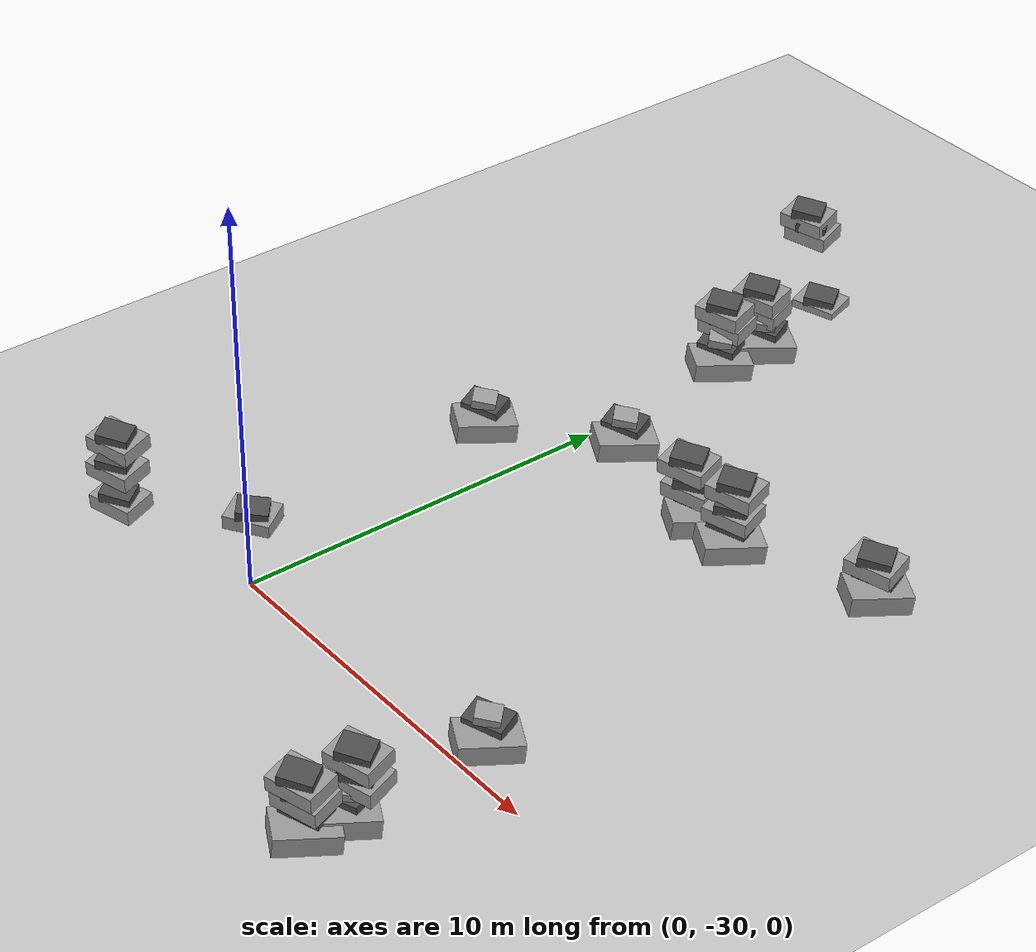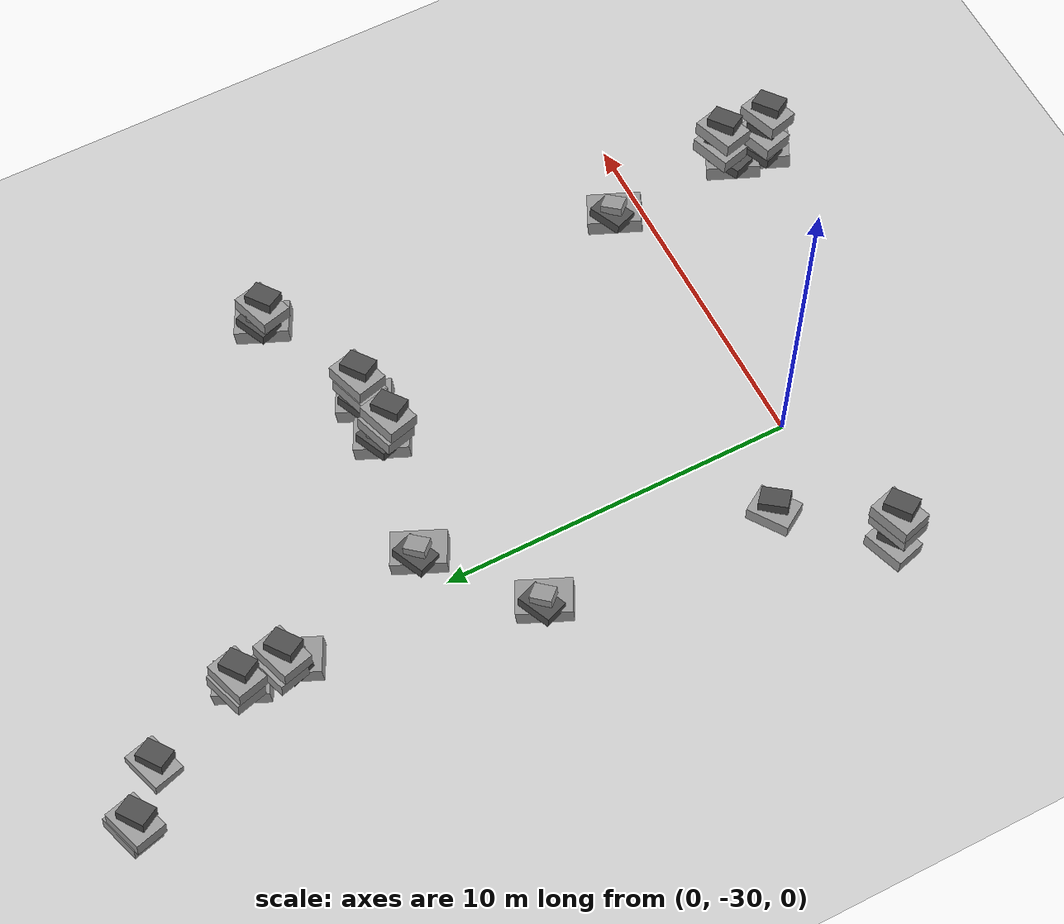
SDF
<sdf version="1.9">
 <world name="disaster_hospital">
  <include>
   <uri>file:///home/robotics/.gazebo/models/ground_plane</uri>
   <static>true</static>
   <name>ground_plane</name>
   <pose>0 0 -0.1 0 -0 0</pose>
  </include>
  <model name="rubble1_02">
   <static>true</static>
   <pose>-4.41712 -30.6792 1.66266 0 -0 0</pose>
   <link name="link">
    <collision name="base_collision">
     <pose>0 0 0.2 0.1 0.05 0.3</pose>
     <geometry><box><size>1.2 0.9 0.4</size></box></geometry>
    </collision>
    <visual name="base_visual">
     <pose>0 0 0.2 0.1 0.05 0.3</pose>
     <geometry><box><size>1.2 0.9 0.4</size></box></geometry>
     <material>
      <script><uri>file://media/materials/scripts/gazebo.material</uri><name>Gazebo/Grey</name></script>
     </material>
    </visual>
    <collision name="top_collision">
     <pose>0.1 -0.1 0.5 0.2 0.1 0.6</pose>
     <geometry><box><size>0.8 0.6 0.3</size></box></geometry>
    </collision>
    <visual name="top_visual">
     <pose>0.1 -0.1 0.5 0.2 0.1 0.6</pose>
     <geometry><box><size>0.8 0.6 0.3</size></box></geometry>
     <material>
      <script><uri>file://media/materials/scripts/gazebo.material</uri><name>Gazebo/DarkGrey</name></script>
     </material>
    </visual>
    <inertial>
     <mass>1</mass>
     <inertia><ixx>1</ixx><ixy>0</ixy><ixz>0</ixz><iyy>1</iyy><iyz>0</iyz><izz>1</izz></inertia>
    </inertial>
   </link>
  </model>
  <model name="rubble1_05">
   <static>true</static>
   <pose>-2.87095 -10.2207 1.15439 0 -0 0</pose>
   <link name="link">
    <collision name="base_collision">
     <pose>0 0 0.2 0.1 0.05 0.3</pose>
     <geometry><box><size>1.2 0.9 0.4</size></box></geometry>
    </collision>
    <visual name="base_visual">
     <pose>0 0 0.2 0.1 0.05 0.3</pose>
     <geometry><box><size>1.2 0.9 0.4</size></box></geometry>
     <material>
      <script><uri>file://media/materials/scripts/gazebo.material</uri><name>Gazebo/Grey</name></script>
     </material>
    </visual>
    <collision name="top_collision">
     <pose>0.1 -0.1 0.5 0.2 0.1 0.6</pose>
     <geometry><box><size>0.8 0.6 0.3</size></box></geometry>
    </collision>
    <visual name="top_visual">
     <pose>0.1 -0.1 0.5 0.2 0.1 0.6</pose>
     <geometry><box><size>0.8 0.6 0.3</size></box></geometry>
     <material>
      <script><uri>file://media/materials/scripts/gazebo.material</uri><name>Gazebo/DarkGrey</name></script>
     </material>
    </visual>
    <inertial>
     <mass>1</mass>
     <inertia><ixx>1</ixx><ixy>0</ixy><ixz>0</ixz><iyy>1</iyy><iyz>0</iyz><izz>1</izz></inertia>
    </inertial>
   </link>
  </model>
  <model name="rubble2_11">
   <static>true</static>
   <pose>9.22413 -19.0507 0 0 -0 0</pose>
   <link name="link">
    <collision name="base_collision">
     <pose>0 0 0.25 0.05 0.1 1.1</pose>
     <geometry><box><size>1.5 1 0.5</size></box></geometry>
    </collision>
    <visual name="base_visual">
     <pose>0 0 0.25 0.05 0.1 1.1</pose>
     <geometry><box><size>1.5 1 0.5</size></box></geometry>
     <material>
      <script><uri>file://media/materials/scripts/gazebo.material</uri><name>Gazebo/Grey</name></script>
     </material>
    </visual>
    <collision name="mid_collision">
     <pose>-0.2 0.2 0.6 0.15 0.05 0.4</pose>
     <geometry><box><size>1 0.7 0.3</size></box></geometry>
    </collision>
    <visual name="mid_visual">
     <pose>-0.2 0.2 0.6 0.15 0.05 0.4</pose>
     <geometry><box><size>1 0.7 0.3</size></box></geometry>
     <material>
      <script><uri>file://media/materials/scripts/gazebo.material</uri><name>Gazebo/DarkGrey</name></script>
     </material>
    </visual>
    <collision name="top_collision">
     <pose>-0.1 0.1 0.85 0.2 0.15 0.8</pose>
     <geometry><box><size>0.6 0.5 0.25</size></box></geometry>
    </collision>
    <visual name="top_visual">
     <pose>-0.1 0.1 0.85 0.2 0.15 0.8</pose>
     <geometry><box><size>0.6 0.5 0.25</size></box></geometry>
     <material>
      <script><uri>file://media/materials/scripts/gazebo.material</uri><name>Gazebo/Grey</name></script>
     </material>
    </visual>
    <inertial>
     <mass>1</mass>
     <inertia><ixx>1</ixx><ixy>0</ixy><ixz>0</ixz><iyy>1</iyy><iyz>0</iyz><izz>1</izz></inertia>
    </inertial>
   </link>
  </model>
  <model name="rubble2_13">
   <static>true</static>
   <pose>-0.248679 -15.565 0 0 -0 0</pose>
   <link name="link">
    <collision name="base_collision">
     <pose>0 0 0.25 0.05 0.1 1.1</pose>
     <geometry><box><size>1.5 1 0.5</size></box></geometry>
    </collision>
    <visual name="base_visual">
     <pose>0 0 0.25 0.05 0.1 1.1</pose>
     <geometry><box><size>1.5 1 0.5</size></box></geometry>
     <material>
      <script><uri>file://media/materials/scripts/gazebo.material</uri><name>Gazebo/Grey</name></script>
     </material>
    </visual>
    <collision name="mid_collision">
     <pose>-0.2 0.2 0.6 0.15 0.05 0.4</pose>
     <geometry><box><size>1 0.7 0.3</size></box></geometry>
    </collision>
    <visual name="mid_visual">
     <pose>-0.2 0.2 0.6 0.15 0.05 0.4</pose>
     <geometry><box><size>1 0.7 0.3</size></box></geometry>
     <material>
      <script><uri>file://media/materials/scripts/gazebo.material</uri><name>Gazebo/DarkGrey</name></script>
     </material>
    </visual>
    <collision name="top_collision">
     <pose>-0.1 0.1 0.85 0.2 0.15 0.8</pose>
     <geometry><box><size>0.6 0.5 0.25</size></box></geometry>
    </collision>
    <visual name="top_visual">
     <pose>-0.1 0.1 0.85 0.2 0.15 0.8</pose>
     <geometry><box><size>0.6 0.5 0.25</size></box></geometry>
     <material>
      <script><uri>file://media/materials/scripts/gazebo.material</uri><name>Gazebo/Grey</name></script>
     </material>
    </visual>
    <inertial>
     <mass>1</mass>
     <inertia><ixx>1</ixx><ixy>0</ixy><ixz>0</ixz><iyy>1</iyy><iyz>0</iyz><izz>1</izz></inertia>
    </inertial>
   </link>
  </model>
  <model name="rubble2_14">
   <static>true</static>
   <pose>-0.190508 -14.1517 0 0 -0 0</pose>
   <link name="link">
    <collision name="base_collision">
     <pose>0 0 0.25 0.05 0.1 1.1</pose>
     <geometry><box><size>1.5 1 0.5</size></box></geometry>
    </collision>
    <visual name="base_visual">
     <pose>0 0 0.25 0.05 0.1 1.1</pose>
     <geometry><box><size>1.5 1 0.5</size></box></geometry>
     <material>
      <script><uri>file://media/materials/scripts/gazebo.material</uri><name>Gazebo/Grey</name></script>
     </material>
    </visual>
    <collision name="mid_collision">
     <pose>-0.2 0.2 0.6 0.15 0.05 0.4</pose>
     <geometry><box><size>1 0.7 0.3</size></box></geometry>
    </collision>
    <visual name="mid_visual">
     <pose>-0.2 0.2 0.6 0.15 0.05 0.4</pose>
     <geometry><box><size>1 0.7 0.3</size></box></geometry>
     <material>
      <script><uri>file://media/materials/scripts/gazebo.material</uri><name>Gazebo/DarkGrey</name></script>
     </material>
    </visual>
    <collision name="top_collision">
     <pose>-0.1 0.1 0.85 0.2 0.15 0.8</pose>
     <geometry><box><size>0.6 0.5 0.25</size></box></geometry>
    </collision>
    <visual name="top_visual">
     <pose>-0.1 0.1 0.85 0.2 0.15 0.8</pose>
     <geometry><box><size>0.6 0.5 0.25</size></box></geometry>
     <material>
      <script><uri>file://media/materials/scripts/gazebo.material</uri><name>Gazebo/Grey</name></script>
     </material>
    </visual>
    <inertial>
     <mass>1</mass>
     <inertia><ixx>1</ixx><ixy>0</ixy><ixz>0</ixz><iyy>1</iyy><iyz>0</iyz><izz>1</izz></inertia>
    </inertial>
   </link>
  </model>
  <model name="rubble1_12">
   <static>true</static>
   <pose>-0.54765 -15.1975 1.30082 0 -0 0</pose>
   <link name="link">
    <collision name="base_collision">
     <pose>0 0 0.2 0.1 0.05 0.3</pose>
     <geometry><box><size>1.2 0.9 0.4</size></box></geometry>
    </collision>
    <visual name="base_visual">
     <pose>0 0 0.2 0.1 0.05 0.3</pose>
     <geometry><box><size>1.2 0.9 0.4</size></box></geometry>
     <material>
      <script><uri>file://media/materials/scripts/gazebo.material</uri><name>Gazebo/Grey</name></script>
     </material>
    </visual>
    <collision name="top_collision">
     <pose>0.1 -0.1 0.5 0.2 0.1 0.6</pose>
     <geometry><box><size>0.8 0.6 0.3</size></box></geometry>
    </collision>
    <visual name="top_visual">
     <pose>0.1 -0.1 0.5 0.2 0.1 0.6</pose>
     <geometry><box><size>0.8 0.6 0.3</size></box></geometry>
     <material>
      <script><uri>file://media/materials/scripts/gazebo.material</uri><name>Gazebo/DarkGrey</name></script>
     </material>
    </visual>
    <inertial>
     <mass>1</mass>
     <inertia><ixx>1</ixx><ixy>0</ixy><ixz>0</ixz><iyy>1</iyy><iyz>0</iyz><izz>1</izz></inertia>
    </inertial>
   </link>
  </model>
  <model name="rubble1_13">
   <static>true</static>
   <pose>-0.531983 -13.9777 1.2937 0 -0 0</pose>
   <link name="link">
    <collision name="base_collision">
     <pose>0 0 0.2 0.1 0.05 0.3</pose>
     <geometry><box><size>1.2 0.9 0.4</size></box></geometry>
    </collision>
    <visual name="base_visual">
     <pose>0 0 0.2 0.1 0.05 0.3</pose>
     <geometry><box><size>1.2 0.9 0.4</size></box></geometry>
     <material>
      <script><uri>file://media/materials/scripts/gazebo.material</uri><name>Gazebo/Grey</name></script>
     </material>
    </visual>
    <collision name="top_collision">
     <pose>0.1 -0.1 0.5 0.2 0.1 0.6</pose>
     <geometry><box><size>0.8 0.6 0.3</size></box></geometry>
    </collision>
    <visual name="top_visual">
     <pose>0.1 -0.1 0.5 0.2 0.1 0.6</pose>
     <geometry><box><size>0.8 0.6 0.3</size></box></geometry>
     <material>
      <script><uri>file://media/materials/scripts/gazebo.material</uri><name>Gazebo/DarkGrey</name></script>
     </material>
    </visual>
    <inertial>
     <mass>1</mass>
     <inertia><ixx>1</ixx><ixy>0</ixy><ixz>0</ixz><iyy>1</iyy><iyz>0</iyz><izz>1</izz></inertia>
    </inertial>
   </link>
  </model>
  <model name="rubble2_22">
   <static>true</static>
   <pose>8.02548 -33.0318 0 0 -0 0</pose>
   <link name="link">
    <collision name="base_collision">
     <pose>0 0 0.25 0.05 0.1 1.1</pose>
     <geometry><box><size>1.5 1 0.5</size></box></geometry>
    </collision>
    <visual name="base_visual">
     <pose>0 0 0.25 0.05 0.1 1.1</pose>
     <geometry><box><size>1.5 1 0.5</size></box></geometry>
     <material>
      <script><uri>file://media/materials/scripts/gazebo.material</uri><name>Gazebo/Grey</name></script>
     </material>
    </visual>
    <collision name="mid_collision">
     <pose>-0.2 0.2 0.6 0.15 0.05 0.4</pose>
     <geometry><box><size>1 0.7 0.3</size></box></geometry>
    </collision>
    <visual name="mid_visual">
     <pose>-0.2 0.2 0.6 0.15 0.05 0.4</pose>
     <geometry><box><size>1 0.7 0.3</size></box></geometry>
     <material>
      <script><uri>file://media/materials/scripts/gazebo.material</uri><name>Gazebo/DarkGrey</name></script>
     </material>
    </visual>
    <collision name="top_collision">
     <pose>-0.1 0.1 0.85 0.2 0.15 0.8</pose>
     <geometry><box><size>0.6 0.5 0.25</size></box></geometry>
    </collision>
    <visual name="top_visual">
     <pose>-0.1 0.1 0.85 0.2 0.15 0.8</pose>
     <geometry><box><size>0.6 0.5 0.25</size></box></geometry>
     <material>
      <script><uri>file://media/materials/scripts/gazebo.material</uri><name>Gazebo/Grey</name></script>
     </material>
    </visual>
    <inertial>
     <mass>1</mass>
     <inertia><ixx>1</ixx><ixy>0</ixy><ixz>0</ixz><iyy>1</iyy><iyz>0</iyz><izz>1</izz></inertia>
    </inertial>
   </link>
  </model>
  <model name="rubble2_23">
   <static>true</static>
   <pose>7.93903 -33.9465 0 0 -0 0</pose>
   <link name="link">
    <collision name="base_collision">
     <pose>0 0 0.25 0.05 0.1 1.1</pose>
     <geometry><box><size>1.5 1 0.5</size></box></geometry>
    </collision>
    <visual name="base_visual">
     <pose>0 0 0.25 0.05 0.1 1.1</pose>
     <geometry><box><size>1.5 1 0.5</size></box></geometry>
     <material>
      <script><uri>file://media/materials/scripts/gazebo.material</uri><name>Gazebo/Grey</name></script>
     </material>
    </visual>
    <collision name="mid_collision">
     <pose>-0.2 0.2 0.6 0.15 0.05 0.4</pose>
     <geometry><box><size>1 0.7 0.3</size></box></geometry>
    </collision>
    <visual name="mid_visual">
     <pose>-0.2 0.2 0.6 0.15 0.05 0.4</pose>
     <geometry><box><size>1 0.7 0.3</size></box></geometry>
     <material>
      <script><uri>file://media/materials/scripts/gazebo.material</uri><name>Gazebo/DarkGrey</name></script>
     </material>
    </visual>
    <collision name="top_collision">
     <pose>-0.1 0.1 0.85 0.2 0.15 0.8</pose>
     <geometry><box><size>0.6 0.5 0.25</size></box></geometry>
    </collision>
    <visual name="top_visual">
     <pose>-0.1 0.1 0.85 0.2 0.15 0.8</pose>
     <geometry><box><size>0.6 0.5 0.25</size></box></geometry>
     <material>
      <script><uri>file://media/materials/scripts/gazebo.material</uri><name>Gazebo/Grey</name></script>
     </material>
    </visual>
    <inertial>
     <mass>1</mass>
     <inertia><ixx>1</ixx><ixy>0</ixy><ixz>0</ixz><iyy>1</iyy><iyz>0</iyz><izz>1</izz></inertia>
    </inertial>
   </link>
  </model>
  <model name="rubble1_21">
   <static>true</static>
   <pose>9.16097 -19.0703 0.854105 0 -0 0</pose>
   <link name="link">
    <collision name="base_collision">
     <pose>0 0 0.2 0.1 0.05 0.3</pose>
     <geometry><box><size>1.2 0.9 0.4</size></box></geometry>
    </collision>
    <visual name="base_visual">
     <pose>0 0 0.2 0.1 0.05 0.3</pose>
     <geometry><box><size>1.2 0.9 0.4</size></box></geometry>
     <material>
      <script><uri>file://media/materials/scripts/gazebo.material</uri><name>Gazebo/Grey</name></script>
     </material>
    </visual>
    <collision name="top_collision">
     <pose>0.1 -0.1 0.5 0.2 0.1 0.6</pose>
     <geometry><box><size>0.8 0.6 0.3</size></box></geometry>
    </collision>
    <visual name="top_visual">
     <pose>0.1 -0.1 0.5 0.2 0.1 0.6</pose>
     <geometry><box><size>0.8 0.6 0.3</size></box></geometry>
     <material>
      <script><uri>file://media/materials/scripts/gazebo.material</uri><name>Gazebo/DarkGrey</name></script>
     </material>
    </visual>
    <inertial>
     <mass>1</mass>
     <inertia><ixx>1</ixx><ixy>0</ixy><ixz>0</ixz><iyy>1</iyy><iyz>0</iyz><izz>1</izz></inertia>
    </inertial>
   </link>
  </model>
  <model name="rubble1_24">
   <static>true</static>
   <pose>8.04631 -32.5848 0.854105 0 -0 0</pose>
   <link name="link">
    <collision name="base_collision">
     <pose>0 0 0.2 0.1 0.05 0.3</pose>
     <geometry><box><size>1.2 0.9 0.4</size></box></geometry>
    </collision>
    <visual name="base_visual">
     <pose>0 0 0.2 0.1 0.05 0.3</pose>
     <geometry><box><size>1.2 0.9 0.4</size></box></geometry>
     <material>
      <script><uri>file://media/materials/scripts/gazebo.material</uri><name>Gazebo/Grey</name></script>
     </material>
    </visual>
    <collision name="top_collision">
     <pose>0.1 -0.1 0.5 0.2 0.1 0.6</pose>
     <geometry><box><size>0.8 0.6 0.3</size></box></geometry>
    </collision>
    <visual name="top_visual">
     <pose>0.1 -0.1 0.5 0.2 0.1 0.6</pose>
     <geometry><box><size>0.8 0.6 0.3</size></box></geometry>
     <material>
      <script><uri>file://media/materials/scripts/gazebo.material</uri><name>Gazebo/DarkGrey</name></script>
     </material>
    </visual>
    <inertial>
     <mass>1</mass>
     <inertia><ixx>1</ixx><ixy>0</ixy><ixz>0</ixz><iyy>1</iyy><iyz>0</iyz><izz>1</izz></inertia>
    </inertial>
   </link>
  </model>
  <model name="rubble1_25">
   <static>true</static>
   <pose>7.86194 -33.834 0.854105 0 -0 0</pose>
   <link name="link">
    <collision name="base_collision">
     <pose>0 0 0.2 0.1 0.05 0.3</pose>
     <geometry><box><size>1.2 0.9 0.4</size></box></geometry>
    </collision>
    <visual name="base_visual">
     <pose>0 0 0.2 0.1 0.05 0.3</pose>
     <geometry><box><size>1.2 0.9 0.4</size></box></geometry>
     <material>
      <script><uri>file://media/materials/scripts/gazebo.material</uri><name>Gazebo/Grey</name></script>
     </material>
    </visual>
    <collision name="top_collision">
     <pose>0.1 -0.1 0.5 0.2 0.1 0.6</pose>
     <geometry><box><size>0.8 0.6 0.3</size></box></geometry>
    </collision>
    <visual name="top_visual">
     <pose>0.1 -0.1 0.5 0.2 0.1 0.6</pose>
     <geometry><box><size>0.8 0.6 0.3</size></box></geometry>
     <material>
      <script><uri>file://media/materials/scripts/gazebo.material</uri><name>Gazebo/DarkGrey</name></script>
     </material>
    </visual>
    <inertial>
     <mass>1</mass>
     <inertia><ixx>1</ixx><ixy>0</ixy><ixz>0</ixz><iyy>1</iyy><iyz>0</iyz><izz>1</izz></inertia>
    </inertial>
   </link>
  </model>
  <model name="rubble1_26">
   <static>true</static>
   <pose>-2.78031 -10.1297 0.755841 0 -0 0</pose>
   <link name="link">
    <collision name="base_collision">
     <pose>0 0 0.2 0.1 0.05 0.3</pose>
     <geometry><box><size>1.2 0.9 0.4</size></box></geometry>
    </collision>
    <visual name="base_visual">
     <pose>0 0 0.2 0.1 0.05 0.3</pose>
     <geometry><box><size>1.2 0.9 0.4</size></box></geometry>
     <material>
      <script><uri>file://media/materials/scripts/gazebo.material</uri><name>Gazebo/Grey</name></script>
     </material>
    </visual>
    <collision name="top_collision">
     <pose>0.1 -0.1 0.5 0.2 0.1 0.6</pose>
     <geometry><box><size>0.8 0.6 0.3</size></box></geometry>
    </collision>
    <visual name="top_visual">
     <pose>0.1 -0.1 0.5 0.2 0.1 0.6</pose>
     <geometry><box><size>0.8 0.6 0.3</size></box></geometry>
     <material>
      <script><uri>file://media/materials/scripts/gazebo.material</uri><name>Gazebo/DarkGrey</name></script>
     </material>
    </visual>
    <inertial>
     <mass>1</mass>
     <inertia><ixx>1</ixx><ixy>0</ixy><ixz>0</ixz><iyy>1</iyy><iyz>0</iyz><izz>1</izz></inertia>
    </inertial>
   </link>
  </model>
  <model name="rubble1_38">
   <static>true</static>
   <pose>8.11231 -32.6601 1.49923 0 -0 0</pose>
   <link name="link">
    <collision name="base_collision">
     <pose>0 0 0.2 0.1 0.05 0.3</pose>
     <geometry><box><size>1.2 0.9 0.4</size></box></geometry>
    </collision>
    <visual name="base_visual">
     <pose>0 0 0.2 0.1 0.05 0.3</pose>
     <geometry><box><size>1.2 0.9 0.4</size></box></geometry>
     <material>
      <script><uri>file://media/materials/scripts/gazebo.material</uri><name>Gazebo/Grey</name></script>
     </material>
    </visual>
    <collision name="top_collision">
     <pose>0.1 -0.1 0.5 0.2 0.1 0.6</pose>
     <geometry><box><size>0.8 0.6 0.3</size></box></geometry>
    </collision>
    <visual name="top_visual">
     <pose>0.1 -0.1 0.5 0.2 0.1 0.6</pose>
     <geometry><box><size>0.8 0.6 0.3</size></box></geometry>
     <material>
      <script><uri>file://media/materials/scripts/gazebo.material</uri><name>Gazebo/DarkGrey</name></script>
     </material>
    </visual>
    <inertial>
     <mass>1</mass>
     <inertia><ixx>1</ixx><ixy>0</ixy><ixz>0</ixz><iyy>1</iyy><iyz>0</iyz><izz>1</izz></inertia>
    </inertial>
   </link>
  </model>
  <model name="rubble1_39">
   <static>true</static>
   <pose>8.04118 -34.0369 1.49923 0 -0 0</pose>
   <link name="link">
    <collision name="base_collision">
     <pose>0 0 0.2 0.1 0.05 0.3</pose>
     <geometry><box><size>1.2 0.9 0.4</size></box></geometry>
    </collision>
    <visual name="base_visual">
     <pose>0 0 0.2 0.1 0.05 0.3</pose>
     <geometry><box><size>1.2 0.9 0.4</size></box></geometry>
     <material>
      <script><uri>file://media/materials/scripts/gazebo.material</uri><name>Gazebo/Grey</name></script>
     </material>
    </visual>
    <collision name="top_collision">
     <pose>0.1 -0.1 0.5 0.2 0.1 0.6</pose>
     <geometry><box><size>0.8 0.6 0.3</size></box></geometry>
    </collision>
    <visual name="top_visual">
     <pose>0.1 -0.1 0.5 0.2 0.1 0.6</pose>
     <geometry><box><size>0.8 0.6 0.3</size></box></geometry>
     <material>
      <script><uri>file://media/materials/scripts/gazebo.material</uri><name>Gazebo/DarkGrey</name></script>
     </material>
    </visual>
    <inertial>
     <mass>1</mass>
     <inertia><ixx>1</ixx><ixy>0</ixy><ixz>0</ixz><iyy>1</iyy><iyz>0</iyz><izz>1</izz></inertia>
    </inertial>
   </link>
  </model>
  <model name="rubble2_24">
   <static>true</static>
   <pose>5.74322 -20.4269 0 0 -0 0</pose>
   <link name="link">
    <collision name="base_collision">
     <pose>0 0 0.25 0.05 0.1 1.1</pose>
     <geometry><box><size>1.5 1 0.5</size></box></geometry>
    </collision>
    <visual name="base_visual">
     <pose>0 0 0.25 0.05 0.1 1.1</pose>
     <geometry><box><size>1.5 1 0.5</size></box></geometry>
     <material>
      <script><uri>file://media/materials/scripts/gazebo.material</uri><name>Gazebo/Grey</name></script>
     </material>
    </visual>
    <collision name="mid_collision">
     <pose>-0.2 0.2 0.6 0.15 0.05 0.4</pose>
     <geometry><box><size>1 0.7 0.3</size></box></geometry>
    </collision>
    <visual name="mid_visual">
     <pose>-0.2 0.2 0.6 0.15 0.05 0.4</pose>
     <geometry><box><size>1 0.7 0.3</size></box></geometry>
     <material>
      <script><uri>file://media/materials/scripts/gazebo.material</uri><name>Gazebo/DarkGrey</name></script>
     </material>
    </visual>
    <collision name="top_collision">
     <pose>-0.1 0.1 0.85 0.2 0.15 0.8</pose>
     <geometry><box><size>0.6 0.5 0.25</size></box></geometry>
    </collision>
    <visual name="top_visual">
     <pose>-0.1 0.1 0.85 0.2 0.15 0.8</pose>
     <geometry><box><size>0.6 0.5 0.25</size></box></geometry>
     <material>
      <script><uri>file://media/materials/scripts/gazebo.material</uri><name>Gazebo/Grey</name></script>
     </material>
    </visual>
    <inertial>
     <mass>1</mass>
     <inertia><ixx>1</ixx><ixy>0</ixy><ixz>0</ixz><iyy>1</iyy><iyz>0</iyz><izz>1</izz></inertia>
    </inertial>
   </link>
  </model>
  <model name="rubble2_25">
   <static>true</static>
   <pose>4.51114 -20.359 0 0 -0 0</pose>
   <link name="link">
    <collision name="base_collision">
     <pose>0 0 0.25 0.05 0.1 1.1</pose>
     <geometry><box><size>1.5 1 0.5</size></box></geometry>
    </collision>
    <visual name="base_visual">
     <pose>0 0 0.25 0.05 0.1 1.1</pose>
     <geometry><box><size>1.5 1 0.5</size></box></geometry>
     <material>
      <script><uri>file://media/materials/scripts/gazebo.material</uri><name>Gazebo/Grey</name></script>
     </material>
    </visual>
    <collision name="mid_collision">
     <pose>-0.2 0.2 0.6 0.15 0.05 0.4</pose>
     <geometry><box><size>1 0.7 0.3</size></box></geometry>
    </collision>
    <visual name="mid_visual">
     <pose>-0.2 0.2 0.6 0.15 0.05 0.4</pose>
     <geometry><box><size>1 0.7 0.3</size></box></geometry>
     <material>
      <script><uri>file://media/materials/scripts/gazebo.material</uri><name>Gazebo/DarkGrey</name></script>
     </material>
    </visual>
    <collision name="top_collision">
     <pose>-0.1 0.1 0.85 0.2 0.15 0.8</pose>
     <geometry><box><size>0.6 0.5 0.25</size></box></geometry>
    </collision>
    <visual name="top_visual">
     <pose>-0.1 0.1 0.85 0.2 0.15 0.8</pose>
     <geometry><box><size>0.6 0.5 0.25</size></box></geometry>
     <material>
      <script><uri>file://media/materials/scripts/gazebo.material</uri><name>Gazebo/Grey</name></script>
     </material>
    </visual>
    <inertial>
     <mass>1</mass>
     <inertia><ixx>1</ixx><ixy>0</ixy><ixz>0</ixz><iyy>1</iyy><iyz>0</iyz><izz>1</izz></inertia>
    </inertial>
   </link>
  </model>
  <model name="rubble1_40">
   <static>true</static>
   <pose>5.68068 -20.3147 0.854105 0 -0 0</pose>
   <link name="link">
    <collision name="base_collision">
     <pose>0 0 0.2 0.1 0.05 0.3</pose>
     <geometry><box><size>1.2 0.9 0.4</size></box></geometry>
    </collision>
    <visual name="base_visual">
     <pose>0 0 0.2 0.1 0.05 0.3</pose>
     <geometry><box><size>1.2 0.9 0.4</size></box></geometry>
     <material>
      <script><uri>file://media/materials/scripts/gazebo.material</uri><name>Gazebo/Grey</name></script>
     </material>
    </visual>
    <collision name="top_collision">
     <pose>0.1 -0.1 0.5 0.2 0.1 0.6</pose>
     <geometry><box><size>0.8 0.6 0.3</size></box></geometry>
    </collision>
    <visual name="top_visual">
     <pose>0.1 -0.1 0.5 0.2 0.1 0.6</pose>
     <geometry><box><size>0.8 0.6 0.3</size></box></geometry>
     <material>
      <script><uri>file://media/materials/scripts/gazebo.material</uri><name>Gazebo/DarkGrey</name></script>
     </material>
    </visual>
    <inertial>
     <mass>1</mass>
     <inertia><ixx>1</ixx><ixy>0</ixy><ixz>0</ixz><iyy>1</iyy><iyz>0</iyz><izz>1</izz></inertia>
    </inertial>
   </link>
  </model>
  <model name="rubble1_41">
   <static>true</static>
   <pose>4.32796 -20.4065 0.854105 0 -0 0</pose>
   <link name="link">
    <collision name="base_collision">
     <pose>0 0 0.2 0.1 0.05 0.3</pose>
     <geometry><box><size>1.2 0.9 0.4</size></box></geometry>
    </collision>
    <visual name="base_visual">
     <pose>0 0 0.2 0.1 0.05 0.3</pose>
     <geometry><box><size>1.2 0.9 0.4</size></box></geometry>
     <material>
      <script><uri>file://media/materials/scripts/gazebo.material</uri><name>Gazebo/Grey</name></script>
     </material>
    </visual>
    <collision name="top_collision">
     <pose>0.1 -0.1 0.5 0.2 0.1 0.6</pose>
     <geometry><box><size>0.8 0.6 0.3</size></box></geometry>
    </collision>
    <visual name="top_visual">
     <pose>0.1 -0.1 0.5 0.2 0.1 0.6</pose>
     <geometry><box><size>0.8 0.6 0.3</size></box></geometry>
     <material>
      <script><uri>file://media/materials/scripts/gazebo.material</uri><name>Gazebo/DarkGrey</name></script>
     </material>
    </visual>
    <inertial>
     <mass>1</mass>
     <inertia><ixx>1</ixx><ixy>0</ixy><ixz>0</ixz><iyy>1</iyy><iyz>0</iyz><izz>1</izz></inertia>
    </inertial>
   </link>
  </model>
  <model name="rubble1_42">
   <static>true</static>
   <pose>5.71045 -20.279 1.49923 0 -0 0</pose>
   <link name="link">
    <collision name="base_collision">
     <pose>0 0 0.2 0.1 0.05 0.3</pose>
     <geometry><box><size>1.2 0.9 0.4</size></box></geometry>
    </collision>
    <visual name="base_visual">
     <pose>0 0 0.2 0.1 0.05 0.3</pose>
     <geometry><box><size>1.2 0.9 0.4</size></box></geometry>
     <material>
      <script><uri>file://media/materials/scripts/gazebo.material</uri><name>Gazebo/Grey</name></script>
     </material>
    </visual>
    <collision name="top_collision">
     <pose>0.1 -0.1 0.5 0.2 0.1 0.6</pose>
     <geometry><box><size>0.8 0.6 0.3</size></box></geometry>
    </collision>
    <visual name="top_visual">
     <pose>0.1 -0.1 0.5 0.2 0.1 0.6</pose>
     <geometry><box><size>0.8 0.6 0.3</size></box></geometry>
     <material>
      <script><uri>file://media/materials/scripts/gazebo.material</uri><name>Gazebo/DarkGrey</name></script>
     </material>
    </visual>
    <inertial>
     <mass>1</mass>
     <inertia><ixx>1</ixx><ixy>0</ixy><ixz>0</ixz><iyy>1</iyy><iyz>0</iyz><izz>1</izz></inertia>
    </inertial>
   </link>
  </model>
  <model name="rubble1_43">
   <static>true</static>
   <pose>4.26523 -20.4782 1.49923 0 -0 0</pose>
   <link name="link">
    <collision name="base_collision">
     <pose>0 0 0.2 0.1 0.05 0.3</pose>
     <geometry><box><size>1.2 0.9 0.4</size></box></geometry>
    </collision>
    <visual name="base_visual">
     <pose>0 0 0.2 0.1 0.05 0.3</pose>
     <geometry><box><size>1.2 0.9 0.4</size></box></geometry>
     <material>
      <script><uri>file://media/materials/scripts/gazebo.material</uri><name>Gazebo/Grey</name></script>
     </material>
    </visual>
    <collision name="top_collision">
     <pose>0.1 -0.1 0.5 0.2 0.1 0.6</pose>
     <geometry><box><size>0.8 0.6 0.3</size></box></geometry>
    </collision>
    <visual name="top_visual">
     <pose>0.1 -0.1 0.5 0.2 0.1 0.6</pose>
     <geometry><box><size>0.8 0.6 0.3</size></box></geometry>
     <material>
      <script><uri>file://media/materials/scripts/gazebo.material</uri><name>Gazebo/DarkGrey</name></script>
     </material>
    </visual>
    <inertial>
     <mass>1</mass>
     <inertia><ixx>1</ixx><ixy>0</ixy><ixz>0</ixz><iyy>1</iyy><iyz>0</iyz><izz>1</izz></inertia>
    </inertial>
   </link>
  </model>
  <model name="rubble_added_69">
   <static>true</static>
   <pose>-4.42416 -30.7308 0 0 -0 0</pose>
   <link name="link">
    <collision name="base_collision">
     <pose>0 0 0.2 0.1 0.05 0.3</pose>
     <geometry><box><size>1.2 0.9 0.4</size></box></geometry>
    </collision>
    <visual name="base_visual">
     <pose>0 0 0.2 0.1 0.05 0.3</pose>
     <geometry><box><size>1.2 0.9 0.4</size></box></geometry>
     <material>
      <script><uri>file://media/materials/scripts/gazebo.material</uri><name>Gazebo/Grey</name></script>
     </material>
    </visual>
    <collision name="top_collision">
     <pose>0.1 -0.1 0.5 0.2 0.1 0.6</pose>
     <geometry><box><size>0.8 0.6 0.3</size></box></geometry>
    </collision>
    <visual name="top_visual">
     <pose>0.1 -0.1 0.5 0.2 0.1 0.6</pose>
     <geometry><box><size>0.8 0.6 0.3</size></box></geometry>
     <material>
      <script><uri>file://media/materials/scripts/gazebo.material</uri><name>Gazebo/DarkGrey</name></script>
     </material>
    </visual>
    <inertial>
     <mass>1</mass>
     <inertia><ixx>1</ixx><ixy>0</ixy><ixz>0</ixz><iyy>1</iyy><iyz>0</iyz><izz>1</izz></inertia>
    </inertial>
   </link>
  </model>
  <model name="rubble_added_71">
   <static>true</static>
   <pose>-4.34364 -30.7893 1.02001 0 -0 0</pose>
   <link name="link">
    <collision name="base_collision">
     <pose>0 0 0.2 0.1 0.05 0.3</pose>
     <geometry><box><size>1.2 0.9 0.4</size></box></geometry>
    </collision>
    <visual name="base_visual">
     <pose>0 0 0.2 0.1 0.05 0.3</pose>
     <geometry><box><size>1.2 0.9 0.4</size></box></geometry>
     <material>
      <script><uri>file://media/materials/scripts/gazebo.material</uri><name>Gazebo/Grey</name></script>
     </material>
    </visual>
    <collision name="top_collision">
     <pose>0.1 -0.1 0.5 0.2 0.1 0.6</pose>
     <geometry><box><size>0.8 0.6 0.3</size></box></geometry>
    </collision>
    <visual name="top_visual">
     <pose>0.1 -0.1 0.5 0.2 0.1 0.6</pose>
     <geometry><box><size>0.8 0.6 0.3</size></box></geometry>
     <material>
      <script><uri>file://media/materials/scripts/gazebo.material</uri><name>Gazebo/DarkGrey</name></script>
     </material>
    </visual>
    <inertial>
     <mass>1</mass>
     <inertia><ixx>1</ixx><ixy>0</ixy><ixz>0</ixz><iyy>1</iyy><iyz>0</iyz><izz>1</izz></inertia>
    </inertial>
   </link>
  </model>
  <model name="rubble_added_73">
   <static>true</static>
   <pose>-0.566293 -13.8797 0.854105 0 -0 0</pose>
   <link name="link">
    <collision name="base_collision">
     <pose>0 0 0.2 0.1 0.05 0.3</pose>
     <geometry><box><size>1.2 0.9 0.4</size></box></geometry>
    </collision>
    <visual name="base_visual">
     <pose>0 0 0.2 0.1 0.05 0.3</pose>
     <geometry><box><size>1.2 0.9 0.4</size></box></geometry>
     <material>
      <script><uri>file://media/materials/scripts/gazebo.material</uri><name>Gazebo/Grey</name></script>
     </material>
    </visual>
    <collision name="top_collision">
     <pose>0.1 -0.1 0.5 0.2 0.1 0.6</pose>
     <geometry><box><size>0.8 0.6 0.3</size></box></geometry>
    </collision>
    <visual name="top_visual">
     <pose>0.1 -0.1 0.5 0.2 0.1 0.6</pose>
     <geometry><box><size>0.8 0.6 0.3</size></box></geometry>
     <material>
      <script><uri>file://media/materials/scripts/gazebo.material</uri><name>Gazebo/DarkGrey</name></script>
     </material>
    </visual>
    <inertial>
     <mass>1</mass>
     <inertia><ixx>1</ixx><ixy>0</ixy><ixz>0</ixz><iyy>1</iyy><iyz>0</iyz><izz>1</izz></inertia>
    </inertial>
   </link>
  </model>
  <model name="rubble_added_74">
   <static>true</static>
   <pose>-0.585665 -15.0553 0.854105 0 -0 0</pose>
   <link name="link">
    <collision name="base_collision">
     <pose>0 0 0.2 0.1 0.05 0.3</pose>
     <geometry><box><size>1.2 0.9 0.4</size></box></geometry>
    </collision>
    <visual name="base_visual">
     <pose>0 0 0.2 0.1 0.05 0.3</pose>
     <geometry><box><size>1.2 0.9 0.4</size></box></geometry>
     <material>
      <script><uri>file://media/materials/scripts/gazebo.material</uri><name>Gazebo/Grey</name></script>
     </material>
    </visual>
    <collision name="top_collision">
     <pose>0.1 -0.1 0.5 0.2 0.1 0.6</pose>
     <geometry><box><size>0.8 0.6 0.3</size></box></geometry>
    </collision>
    <visual name="top_visual">
     <pose>0.1 -0.1 0.5 0.2 0.1 0.6</pose>
     <geometry><box><size>0.8 0.6 0.3</size></box></geometry>
     <material>
      <script><uri>file://media/materials/scripts/gazebo.material</uri><name>Gazebo/DarkGrey</name></script>
     </material>
    </visual>
    <inertial>
     <mass>1</mass>
     <inertia><ixx>1</ixx><ixy>0</ixy><ixz>0</ixz><iyy>1</iyy><iyz>0</iyz><izz>1</izz></inertia>
    </inertial>
   </link>
  </model>
  <model name="rubble1_12_clone">
   <static>true</static>
   <pose>-1.10898 -11.2814 -0.272856 0 -0 0</pose>
   <link name="link">
    <collision name="base_collision">
     <pose>0 0 0.2 0.1 0.05 0.3</pose>
     <geometry><box><size>1.2 0.9 0.4</size></box></geometry>
    </collision>
    <visual name="base_visual">
     <pose>0 0 0.2 0.1 0.05 0.3</pose>
     <geometry><box><size>1.2 0.9 0.4</size></box></geometry>
     <material>
      <script><uri>file://media/materials/scripts/gazebo.material</uri><name>Gazebo/Grey</name></script>
     </material>
    </visual>
    <collision name="top_collision">
     <pose>0.1 -0.1 0.5 0.2 0.1 0.6</pose>
     <geometry><box><size>0.8 0.6 0.3</size></box></geometry>
    </collision>
    <visual name="top_visual">
     <pose>0.1 -0.1 0.5 0.2 0.1 0.6</pose>
     <geometry><box><size>0.8 0.6 0.3</size></box></geometry>
     <material>
      <script><uri>file://media/materials/scripts/gazebo.material</uri><name>Gazebo/DarkGrey</name></script>
     </material>
    </visual>
    <inertial>
     <mass>1</mass>
     <inertia><ixx>1</ixx><ixy>0</ixy><ixz>0</ixz><iyy>1</iyy><iyz>0</iyz><izz>1</izz></inertia>
    </inertial>
   </link>
  </model>
  <model name="rubble1_02_clone_clone_clone_clone">
   <static>true</static>
   <pose>-2.1091 -28.5246 -0.125296 0 -0 0.278258</pose>
   <link name="link">
    <collision name="base_collision">
     <pose>0 0 0.2 0.1 0.05 0.3</pose>
     <geometry><box><size>1.2 0.9 0.4</size></box></geometry>
    </collision>
    <visual name="base_visual">
     <pose>0 0 0.2 0.1 0.05 0.3</pose>
     <geometry><box><size>1.2 0.9 0.4</size></box></geometry>
     <material>
      <script><uri>file://media/materials/scripts/gazebo.material</uri><name>Gazebo/Grey</name></script>
     </material>
    </visual>
    <collision name="top_collision">
     <pose>0.1 -0.1 0.5 0.2 0.1 0.6</pose>
     <geometry><box><size>0.8 0.6 0.3</size></box></geometry>
    </collision>
    <visual name="top_visual">
     <pose>0.1 -0.1 0.5 0.2 0.1 0.6</pose>
     <geometry><box><size>0.8 0.6 0.3</size></box></geometry>
     <material>
      <script><uri>file://media/materials/scripts/gazebo.material</uri><name>Gazebo/DarkGrey</name></script>
     </material>
    </visual>
    <inertial>
     <mass>1</mass>
     <inertia><ixx>1</ixx><ixy>0</ixy><ixz>0</ixz><iyy>1</iyy><iyz>0</iyz><izz>1</izz></inertia>
    </inertial>
   </link>
  </model>
  <model name="rubble2_05_clone_clone_1">
   <static>true</static>
   <pose>-1.71089 -21.953 0 0 -0 0</pose>
   <link name="link">
    <collision name="base_collision">
     <pose>0 0 0.25 0.05 0.1 1.1</pose>
     <geometry><box><size>1.5 1 0.5</size></box></geometry>
    </collision>
    <visual name="base_visual">
     <pose>0 0 0.25 0.05 0.1 1.1</pose>
     <geometry><box><size>1.5 1 0.5</size></box></geometry>
     <material>
      <script><uri>file://media/materials/scripts/gazebo.material</uri><name>Gazebo/Grey</name></script>
     </material>
    </visual>
    <collision name="mid_collision">
     <pose>-0.2 0.2 0.6 0.15 0.05 0.4</pose>
     <geometry><box><size>1 0.7 0.3</size></box></geometry>
    </collision>
    <visual name="mid_visual">
     <pose>-0.2 0.2 0.6 0.15 0.05 0.4</pose>
     <geometry><box><size>1 0.7 0.3</size></box></geometry>
     <material>
      <script><uri>file://media/materials/scripts/gazebo.material</uri><name>Gazebo/DarkGrey</name></script>
     </material>
    </visual>
    <collision name="top_collision">
     <pose>-0.1 0.1 0.85 0.2 0.15 0.8</pose>
     <geometry><box><size>0.6 0.5 0.25</size></box></geometry>
    </collision>
    <visual name="top_visual">
     <pose>-0.1 0.1 0.85 0.2 0.15 0.8</pose>
     <geometry><box><size>0.6 0.5 0.25</size></box></geometry>
     <material>
      <script><uri>file://media/materials/scripts/gazebo.material</uri><name>Gazebo/Grey</name></script>
     </material>
    </visual>
    <inertial>
     <mass>1</mass>
     <inertia><ixx>1</ixx><ixy>0</ixy><ixz>0</ixz><iyy>1</iyy><iyz>0</iyz><izz>1</izz></inertia>
    </inertial>
   </link>
  </model>
  <model name="rubble2_05_clone_clone_2">
   <static>true</static>
   <pose>1.01484 -19.7213 0 0 -0 0</pose>
   <link name="link">
    <collision name="base_collision">
     <pose>0 0 0.25 0.05 0.1 1.1</pose>
     <geometry><box><size>1.5 1 0.5</size></box></geometry>
    </collision>
    <visual name="base_visual">
     <pose>0 0 0.25 0.05 0.1 1.1</pose>
     <geometry><box><size>1.5 1 0.5</size></box></geometry>
     <material>
      <script><uri>file://media/materials/scripts/gazebo.material</uri><name>Gazebo/Grey</name></script>
     </material>
    </visual>
    <collision name="mid_collision">
     <pose>-0.2 0.2 0.6 0.15 0.05 0.4</pose>
     <geometry><box><size>1 0.7 0.3</size></box></geometry>
    </collision>
    <visual name="mid_visual">
     <pose>-0.2 0.2 0.6 0.15 0.05 0.4</pose>
     <geometry><box><size>1 0.7 0.3</size></box></geometry>
     <material>
      <script><uri>file://media/materials/scripts/gazebo.material</uri><name>Gazebo/DarkGrey</name></script>
     </material>
    </visual>
    <collision name="top_collision">
     <pose>-0.1 0.1 0.85 0.2 0.15 0.8</pose>
     <geometry><box><size>0.6 0.5 0.25</size></box></geometry>
    </collision>
    <visual name="top_visual">
     <pose>-0.1 0.1 0.85 0.2 0.15 0.8</pose>
     <geometry><box><size>0.6 0.5 0.25</size></box></geometry>
     <material>
      <script><uri>file://media/materials/scripts/gazebo.material</uri><name>Gazebo/Grey</name></script>
     </material>
    </visual>
    <inertial>
     <mass>1</mass>
     <inertia><ixx>1</ixx><ixy>0</ixy><ixz>0</ixz><iyy>1</iyy><iyz>0</iyz><izz>1</izz></inertia>
    </inertial>
   </link>
  </model>
  <model name="rubble2_05_clone_clone_3">
   <static>true</static>
   <pose>7.94827 -29.2121 0 0 -0 0</pose>
   <link name="link">
    <collision name="base_collision">
     <pose>0 0 0.25 0.05 0.1 1.1</pose>
     <geometry><box><size>1.5 1 0.5</size></box></geometry>
    </collision>
    <visual name="base_visual">
     <pose>0 0 0.25 0.05 0.1 1.1</pose>
     <geometry><box><size>1.5 1 0.5</size></box></geometry>
     <material>
      <script><uri>file://media/materials/scripts/gazebo.material</uri><name>Gazebo/Grey</name></script>
     </material>
    </visual>
    <collision name="mid_collision">
     <pose>-0.2 0.2 0.6 0.15 0.05 0.4</pose>
     <geometry><box><size>1 0.7 0.3</size></box></geometry>
    </collision>
    <visual name="mid_visual">
     <pose>-0.2 0.2 0.6 0.15 0.05 0.4</pose>
     <geometry><box><size>1 0.7 0.3</size></box></geometry>
     <material>
      <script><uri>file://media/materials/scripts/gazebo.material</uri><name>Gazebo/DarkGrey</name></script>
     </material>
    </visual>
    <collision name="top_collision">
     <pose>-0.1 0.1 0.85 0.2 0.15 0.8</pose>
     <geometry><box><size>0.6 0.5 0.25</size></box></geometry>
    </collision>
    <visual name="top_visual">
     <pose>-0.1 0.1 0.85 0.2 0.15 0.8</pose>
     <geometry><box><size>0.6 0.5 0.25</size></box></geometry>
     <material>
      <script><uri>file://media/materials/scripts/gazebo.material</uri><name>Gazebo/Grey</name></script>
     </material>
    </visual>
    <inertial>
     <mass>1</mass>
     <inertia><ixx>1</ixx><ixy>0</ixy><ixz>0</ixz><iyy>1</iyy><iyz>0</iyz><izz>1</izz></inertia>
    </inertial>
   </link>
  </model>
  <model name="outside_ground_south">
   <static>true</static>
   <pose>0 -36.25 0.165474 0 0 0</pose>
   <link name="link">
    <collision name="collision"><geometry><box><size>120.0 47.5 0.02</size></box></geometry></collision>
   </link>
  </model>
 </world>
</sdf>
